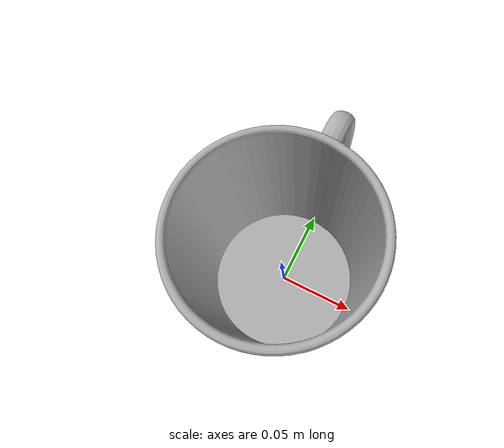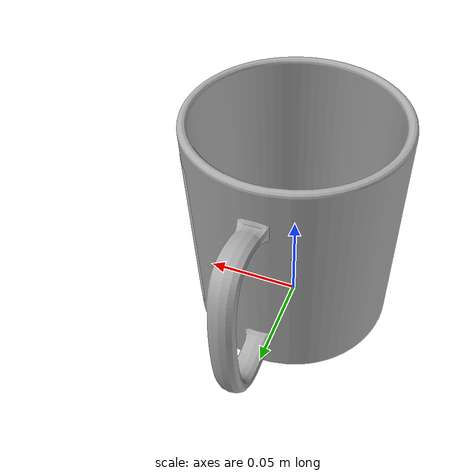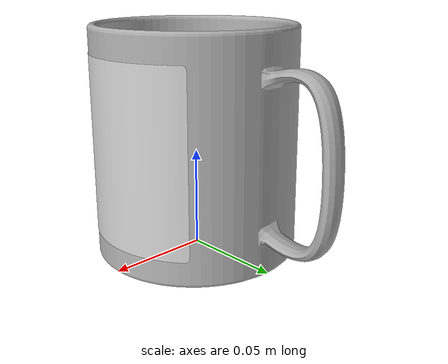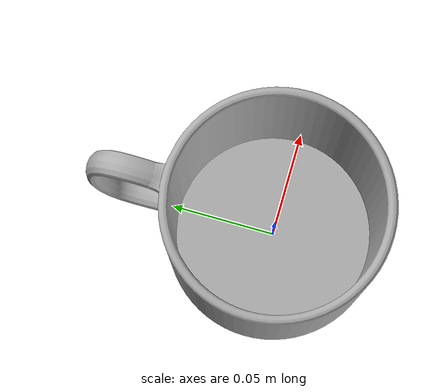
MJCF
<mujoco model="mug_b">
  <default>
    <default class="visual">
      <geom group="1" type="mesh" contype="0" conaffinity="0"/>
    </default>
    <default class="collision">
      <geom group="0" type="mesh" solref="0.01 1" solimp="0.99 0.99 0.01" margin="0.001" priority="1" friction="5 5 0.0001"/>
    </default>
  </default>
  <asset>
    <material name="CoffeeText1" specular="0.5" shininess="0.5" rgba="0.800000 0.800000 0.800000 1.000000"/>
    <material name="Cup_White" specular="0.42" shininess="0.5" rgba="0.673851 0.673851 0.673851 1.000000"/>
    <mesh file="mug_b_0.obj" name="mug_b_0"/>
    <mesh file="mug_b_1.obj" name="mug_b_1"/>
    <mesh file="mug_b_collision_0.obj" name="mug_b_collision_0"/>
    <mesh file="mug_b_collision_1.obj" name="mug_b_collision_1"/>
    <mesh file="mug_b_collision_2.obj" name="mug_b_collision_2"/>
    <mesh file="mug_b_collision_3.obj" name="mug_b_collision_3"/>
    <mesh file="mug_b_collision_4.obj" name="mug_b_collision_4"/>
    <mesh file="mug_b_collision_5.obj" name="mug_b_collision_5"/>
    <mesh file="mug_b_collision_6.obj" name="mug_b_collision_6"/>
    <mesh file="mug_b_collision_7.obj" name="mug_b_collision_7"/>
    <mesh file="mug_b_collision_8.obj" name="mug_b_collision_8"/>
    <mesh file="mug_b_collision_9.obj" name="mug_b_collision_9"/>
    <mesh file="mug_b_collision_10.obj" name="mug_b_collision_10"/>
    <mesh file="mug_b_collision_11.obj" name="mug_b_collision_11"/>
    <mesh file="mug_b_collision_12.obj" name="mug_b_collision_12"/>
    <mesh file="mug_b_collision_13.obj" name="mug_b_collision_13"/>
    <mesh file="mug_b_collision_14.obj" name="mug_b_collision_14"/>
    <mesh file="mug_b_collision_15.obj" name="mug_b_collision_15"/>
    <mesh file="mug_b_collision_16.obj" name="mug_b_collision_16"/>
    <mesh file="mug_b_collision_17.obj" name="mug_b_collision_17"/>
    <mesh file="mug_b_collision_18.obj" name="mug_b_collision_18"/>
    <mesh file="mug_b_collision_19.obj" name="mug_b_collision_19"/>
    <mesh file="mug_b_collision_20.obj" name="mug_b_collision_20"/>
    <mesh file="mug_b_collision_21.obj" name="mug_b_collision_21"/>
    <mesh file="mug_b_collision_22.obj" name="mug_b_collision_22"/>
    <mesh file="mug_b_collision_23.obj" name="mug_b_collision_23"/>
    <mesh file="mug_b_collision_24.obj" name="mug_b_collision_24"/>
    <mesh file="mug_b_collision_25.obj" name="mug_b_collision_25"/>
    <mesh file="mug_b_collision_26.obj" name="mug_b_collision_26"/>
    <mesh file="mug_b_collision_27.obj" name="mug_b_collision_27"/>
    <mesh file="mug_b_collision_28.obj" name="mug_b_collision_28"/>
    <mesh file="mug_b_collision_29.obj" name="mug_b_collision_29"/>
    <mesh file="mug_b_collision_30.obj" name="mug_b_collision_30"/>
    <mesh file="mug_b_collision_31.obj" name="mug_b_collision_31"/>
    <mesh file="mug_b_collision_32.obj" name="mug_b_collision_32"/>
    <mesh file="mug_b_collision_33.obj" name="mug_b_collision_33"/>
    <mesh file="mug_b_collision_34.obj" name="mug_b_collision_34"/>
    <mesh file="mug_b_collision_35.obj" name="mug_b_collision_35"/>
    <mesh file="mug_b_collision_36.obj" name="mug_b_collision_36"/>
    <mesh file="mug_b_collision_37.obj" name="mug_b_collision_37"/>
    <mesh file="mug_b_collision_38.obj" name="mug_b_collision_38"/>
    <mesh file="mug_b_collision_39.obj" name="mug_b_collision_39"/>
    <mesh file="mug_b_collision_40.obj" name="mug_b_collision_40"/>
    <mesh file="mug_b_collision_41.obj" name="mug_b_collision_41"/>
    <mesh file="mug_b_collision_42.obj" name="mug_b_collision_42"/>
    <mesh file="mug_b_collision_43.obj" name="mug_b_collision_43"/>
    <mesh file="mug_b_collision_44.obj" name="mug_b_collision_44"/>
    <mesh file="mug_b_collision_45.obj" name="mug_b_collision_45"/>
    <mesh file="mug_b_collision_46.obj" name="mug_b_collision_46"/>
    <mesh file="mug_b_collision_47.obj" name="mug_b_collision_47"/>
    <mesh file="mug_b_collision_48.obj" name="mug_b_collision_48"/>
    <mesh file="mug_b_collision_49.obj" name="mug_b_collision_49"/>
  </asset>
  <worldbody>
    <body name="base" pos="0 0 0">
      <body name="object">
      <geom mesh="mug_b_0" material="CoffeeText1" class="visual"/>
      <geom mesh="mug_b_1" material="Cup_White" class="visual"/>
      <geom mesh="mug_b_collision_0" rgba="1 0 0 0" class="collision"/>
      <geom mesh="mug_b_collision_1" rgba="1 0 0 0" class="collision"/>
      <geom mesh="mug_b_collision_2" rgba="1 0 0 0" class="collision"/>
      <geom mesh="mug_b_collision_3" rgba="1 0 0 0" class="collision"/>
      <geom mesh="mug_b_collision_4" rgba="1 0 0 0" class="collision"/>
      <geom mesh="mug_b_collision_5" rgba="1 0 0 0" class="collision"/>
      <geom mesh="mug_b_collision_6" rgba="1 0 0 0" class="collision"/>
      <geom mesh="mug_b_collision_7" rgba="1 0 0 0" class="collision"/>
      <geom mesh="mug_b_collision_8" rgba="1 0 0 0" class="collision"/>
      <geom mesh="mug_b_collision_9" rgba="1 0 0 0" class="collision"/>
      <geom mesh="mug_b_collision_10" rgba="1 0 0 0" class="collision"/>
      <geom mesh="mug_b_collision_11" rgba="1 0 0 0" class="collision"/>
      <geom mesh="mug_b_collision_12" rgba="1 0 0 0" class="collision"/>
      <geom mesh="mug_b_collision_13" rgba="1 0 0 0" class="collision"/>
      <geom mesh="mug_b_collision_14" rgba="1 0 0 0" class="collision"/>
      <geom mesh="mug_b_collision_15" rgba="1 0 0 0" class="collision"/>
      <geom mesh="mug_b_collision_16" rgba="1 0 0 0" class="collision"/>
      <geom mesh="mug_b_collision_17" rgba="1 0 0 0" class="collision"/>
      <geom mesh="mug_b_collision_18" rgba="1 0 0 0" class="collision"/>
      <geom mesh="mug_b_collision_19" rgba="1 0 0 0" class="collision"/>
      <geom mesh="mug_b_collision_20" rgba="1 0 0 0" class="collision"/>
      <geom mesh="mug_b_collision_21" rgba="1 0 0 0" class="collision"/>
      <geom mesh="mug_b_collision_22" rgba="1 0 0 0" class="collision"/>
      <geom mesh="mug_b_collision_23" rgba="1 0 0 0" class="collision"/>
      <geom mesh="mug_b_collision_24" rgba="1 0 0 0" class="collision"/>
      <geom mesh="mug_b_collision_25" rgba="1 0 0 0" class="collision"/>
      <geom mesh="mug_b_collision_26" rgba="1 0 0 0" class="collision"/>
      <geom mesh="mug_b_collision_27" rgba="1 0 0 0" class="collision"/>
      <geom mesh="mug_b_collision_28" rgba="1 0 0 0" class="collision"/>
      <geom mesh="mug_b_collision_29" rgba="1 0 0 0" class="collision"/>
      <geom mesh="mug_b_collision_30" rgba="1 0 0 0" class="collision"/>
      <geom mesh="mug_b_collision_31" rgba="1 0 0 0" class="collision"/>
      <geom mesh="mug_b_collision_32" rgba="1 0 0 0" class="collision"/>
      <geom mesh="mug_b_collision_33" rgba="1 0 0 0" class="collision"/>
      <geom mesh="mug_b_collision_34" rgba="1 0 0 0" class="collision"/>
      <geom mesh="mug_b_collision_35" rgba="1 0 0 0" class="collision"/>
      <geom mesh="mug_b_collision_36" rgba="1 0 0 0" class="collision"/>
      <geom mesh="mug_b_collision_37" rgba="1 0 0 0" class="collision"/>
      <geom mesh="mug_b_collision_38" rgba="1 0 0 0" class="collision"/>
      <geom mesh="mug_b_collision_39" rgba="1 0 0 0" class="collision"/>
      <geom mesh="mug_b_collision_40" rgba="1 0 0 0" class="collision"/>
      <geom mesh="mug_b_collision_41" rgba="1 0 0 0" class="collision"/>
      <geom mesh="mug_b_collision_42" rgba="1 0 0 0" class="collision"/>
      <geom mesh="mug_b_collision_43" rgba="1 0 0 0" class="collision"/>
      <geom mesh="mug_b_collision_44" rgba="1 0 0 0" class="collision"/>
      <geom mesh="mug_b_collision_45" rgba="1 0 0 0" class="collision"/>
      <geom mesh="mug_b_collision_46" rgba="1 0 0 0" class="collision"/>
      <geom mesh="mug_b_collision_47" rgba="1 0 0 0" class="collision"/>
      <geom mesh="mug_b_collision_48" rgba="1 0 0 0" class="collision"/>
      <geom mesh="mug_b_collision_49" rgba="1 0 0 0" class="collision"/>
      </body>
    </body>
  </worldbody>
</mujoco>
